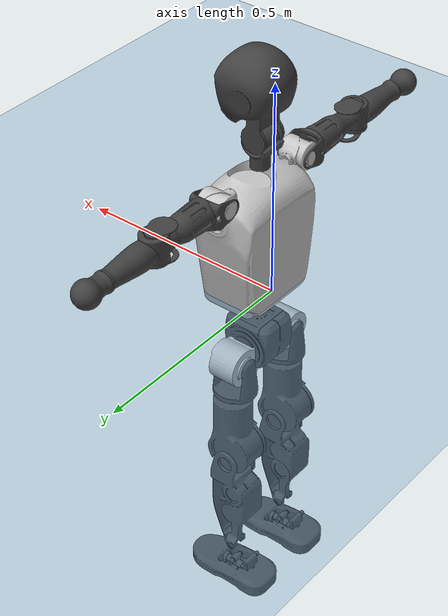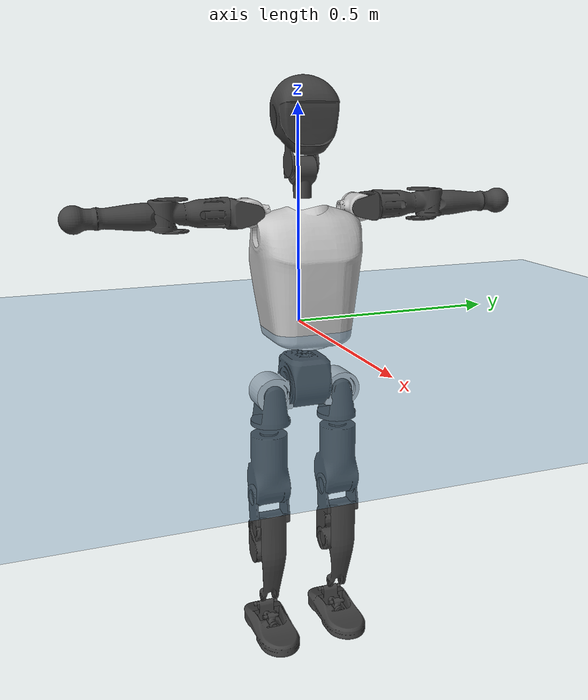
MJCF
<mujoco model="T1">
  <compiler angle="radian" assetdir="assets" balanceinertia="true" inertiafromgeom="false"/>

  <option timestep="0.005" density="1.2" viscosity="2e-05"/>

  <size nkey="1"/>

  <visual>
    <quality shadowsize="8192"/>
    <map shadowclip="0.5"/>
  </visual>

  <default>
    <default class="/">
      <joint armature="0.01" damping="0.01" frictionloss="0.1"/>
      <geom contype="0" conaffinity="0" group="1" solref="-1000 -80"/>
      <site size="0.01 0.005 0.005" group="5"/>
      <general forcelimited="true" biastype="affine" gainprm="25" biasprm="0 -25 -0.6"/>
      <default class="t1">
        <geom rgba="0.25 0.25 0.25 1"/>
        <default class="visual">
          <geom type="mesh" group="2"/>
        </default>
        <default class="collision">
          <geom group="3"/>
        </default>
        <default class="foot">
          <geom size="0.1115 0.05 0.015" type="box" condim="6" group="4" priority="1" solimp="0.015 1 0.015"/>
        </default>
        <default class="reward_collision_sphere">
          <geom group="5" rgba="1 0 0 1"/>
        </default>
      </default>
    </default>
  </default>

  <asset>
    <texture type="skybox" colorspace="auto" name="//unnamed_texture_0" builtin="gradient" rgb1="0.95 0.95 0.95" rgb2="0.95 0.95 0.95" width="100" height="600"/>
    <texture type="2d" colorspace="auto" name="texplane" builtin="checker" rgb1="0.345 0.575 0.748" rgb2="0.345 0.575 0.748" markrgb="1 1 1" width="512" height="512"/>
    <material name="MatPlane" class="/" texture="texplane" texuniform="true" texrepeat="2 2" specular="0.9"/>
    <mesh name="Trunk" class="/" file="Trunk.stl"/>
    <mesh name="H1" class="/" file="H1.stl"/>
    <mesh name="H2" class="/" file="H2.stl"/>
    <mesh name="AL1" class="/" file="AL1.stl"/>
    <mesh name="AL2" class="/" file="AL2.stl"/>
    <mesh name="AL3" class="/" file="AL3.stl"/>
    <mesh name="left_hand_link" class="/" file="left_hand_link.stl"/>
    <mesh name="AR1" class="/" file="AR1.stl"/>
    <mesh name="AR2" class="/" file="AR2.stl"/>
    <mesh name="AR3" class="/" file="AR3.stl"/>
    <mesh name="right_hand_link" class="/" file="right_hand_link.stl"/>
    <mesh name="Waist" class="/" file="Waist.stl"/>
    <mesh name="Hip_Pitch_Left" class="/" file="Hip_Pitch_Left.stl"/>
    <mesh name="Hip_Roll_Left" class="/" file="Hip_Roll_Left.stl"/>
    <mesh name="Hip_Yaw_Left" class="/" file="Hip_Yaw_Left.stl"/>
    <mesh name="Shank_Left" class="/" file="Shank_Left.stl"/>
    <mesh name="Ankle_Cross_Left" class="/" file="Ankle_Cross_Left.stl"/>
    <mesh name="left_foot_link" class="/" file="left_foot_link.stl"/>
    <mesh name="Hip_Pitch_Right" class="/" file="Hip_Pitch_Right.stl"/>
    <mesh name="Hip_Roll_Right" class="/" file="Hip_Roll_Right.stl"/>
    <mesh name="Hip_Yaw_Right" class="/" file="Hip_Yaw_Right.stl"/>
    <mesh name="Shank_Right" class="/" file="Shank_Right.stl"/>
    <mesh name="Ankle_Cross_Right" class="/" file="Ankle_Cross_Right.stl"/>
    <mesh name="right_foot_link" class="/" file="right_foot_link.stl"/>
  </asset>

  <worldbody>
    <geom name="floor" class="/" size="100 100 0.125" type="plane" group="0" material="MatPlane"/>
    <light name="toplight_shadow" class="/" pos="0 0 5" dir="0.0990148 0.0990148 -0.990148" type="directional" ambient="0.04 0.04 0.04" diffuse="0.55 0.55 0.55" specular="0.12 0.12 0.12"/>
    <light name="toplight_fill" class="/" pos="0 0 5" dir="0.0990148 0.0990148 -0.990148" type="directional" castshadow="false" ambient="0.04 0.04 0.04" diffuse="0.3 0.3 0.3" specular="0.08 0.08 0.08"/>
    <body name="trunk" childclass="t1" pos="0.000860678 -0.00214538 -0.000238541" quat="0.999999 -0.000100032 0.000969146 -0.000364247">
      <inertial pos="0.0329092 0.000233706 0.130479" quat="0.99998 -0.00236048 -0.00582808 -0.000994691" mass="7.82236" diaginertia="0.00766097 0.0253063 0.157211"/>
      <joint name="//unnamed_joint_0" type="free" armature="0" damping="0" frictionloss="0"/>
      <geom name="//unnamed_geom_1" class="visual" rgba="0.76 0.76 0.76 1" mesh="Trunk"/>
      <geom name="//unnamed_geom_2" class="collision" size="0.0659553 0.0879404 0.131911" pos="0.0365809 0 0.146742" type="box"/>
      <geom name="//unnamed_geom_3" class="reward_collision_sphere" size="0.101132" pos="0.0365809 0 0.122285"/>
      <geom name="//unnamed_geom_4" class="reward_collision_sphere" size="0.0131911" pos="0.0365809 0.0684826 0"/>
      <geom name="//unnamed_geom_5" class="reward_collision_sphere" size="0.0131911" pos="0.0365809 -0.0684826 0"/>
      <geom name="//unnamed_geom_6" class="reward_collision_sphere" size="0.0131911" pos="0.0365809 0.0862076 0.220114"/>
      <geom name="//unnamed_geom_7" class="reward_collision_sphere" size="0.0131911" pos="0.0365809 -0.0862076 0.220114"/>
      <site name="imu" pos="0.0191546 -0.020994 0.0181012" size="0.00879404"/>
      <camera name="track" pos="0 -1.61136 0" quat="0.707107 0.707107 0 0" mode="trackcom"/>
      <camera name="ego_camera" pos="0.0743812 0 0.513598" quat="-0.5 -0.5 0.5 0.5"/>
      <body name="H1" pos="0.0375871 -0.00285382 0.294732" quat="0.999998 0.000542487 0.00164605 -6.38275e-05">
        <inertial pos="-0.000876652 0.000128831 0.0724041" quat="0.76222 -0.0155983 -0.00907491 0.647067" mass="0.275153" diaginertia="2.00366e-05 7.57196e-05 0.000401343"/>
        <joint name="AAHead_yaw" pos="0 0 0" axis="-0.00262288 -0.000584548 0.999996" range="-1.52148 1.57342" armature="0.00692968" damping="0.0171023" frictionloss="0.0853209"/>
        <geom name="//unnamed_geom_8" class="visual" mesh="H1"/>
        <body name="H2" pos="-0.00546489 -0.000495984 0.0760546" quat="1 0.000436504 -0.000239712 -0.000306406">
          <inertial pos="0.00457688 0.00249787 0.119607" quat="0.988764 0.103313 -0.0824993 -0.0697508" mass="0.411349" diaginertia="0.000169936 0.000641163 0.00471026"/>
          <joint name="Head_pitch" pos="0 0 0" axis="0.00272459 -0.999996 0.000113006" range="-1.27073 0.340885" armature="0.00984856" damping="0" frictionloss="0.0790061"/>
          <geom name="//unnamed_geom_9" class="visual" mesh="H2"/>
          <geom name="//unnamed_geom_10" class="collision" size="0.0703524" pos="0.00609682 0 0.134514"/>
          <geom name="//unnamed_geom_11" class="reward_collision_sphere" size="0.0791464" pos="0.0121936 0 0.122285"/>
        </body>
      </body>
      <body name="AL1" pos="0.0401531 0.0856284 0.270479" quat="1 0.000521742 0.000248822 -4.38479e-06">
        <inertial pos="-7.89827e-05 0.0342246 0.000278595" quat="0.499852 0.502253 -0.497264 0.500618" mass="0.365828" diaginertia="0.000115649 0.00042771 0.000780692"/>
        <joint name="Left_Shoulder_Pitch" pos="0 0 0" axis="0.0107997 0.999941 0.000661512" range="-3.26999 1.18791" armature="0.00781591" damping="0.0104271" frictionloss="0.0872828"/>
        <geom name="//unnamed_geom_12" class="visual" rgba="0.76 0.76 0.76 1" mesh="AL1"/>
        <body name="AL2" pos="0.00128394 0.0397449 -0.000108678" quat="1 -0.000211299 -0.000214995 -6.35584e-05">
          <inertial pos="0.00439352 0.0280811 -0.00270958" quat="0.486842 0.512035 -0.485846 0.514547" mass="0.104909" diaginertia="3.40098e-05 0.000121211 0.000487432"/>
          <joint name="Left_Shoulder_Roll" pos="0 0 0" axis="-0.99999 0.00329006 -0.00317902" range="-1.64447 1.66901" armature="0.0103042" damping="0.0028822" frictionloss="0.0887372"/>
          <geom name="//unnamed_geom_13" class="visual" mesh="AL2"/>
          <body name="AL3" pos="-3.28966e-05 0.0469438 0.00277113" quat="0.999999 -0.000354695 0.000771945 0.000595755">
            <inertial pos="-0.000259333 0.0690042 -0.000915472" quat="0.708202 0.705987 0.00247923 0.00513645" mass="0.655853" diaginertia="0.00106168 0.00422121 0.00174412"/>
            <joint name="Left_Elbow_Pitch" pos="0 0 0" axis="0.0194952 -0.99971 0.0141517" stiffness="0.025164" range="-2.34824 2.23683" armature="0.0110561" damping="0.0389896" frictionloss="0.0908451"/>
            <geom name="//unnamed_geom_14" class="visual" mesh="AL3"/>
            <geom name="//unnamed_geom_15" class="collision" size="0.0263821 0.0659553" pos="0 0.0402839 0" quat="0.707105 0.707108 0 0" type="cylinder"/>
            <geom name="//unnamed_geom_16" class="reward_collision_sphere" size="0.0316586"/>
            <body name="left_hand_link" pos="0.00144312 0.117495 -0.00265309" quat="1 -0.00023787 6.59533e-05 0.000689253">
              <inertial pos="-0.0011713 0.0907029 0.00155896" quat="0.707934 0.706279 0.000107837 0.000121004" mass="0.226714" diaginertia="0.000662673 0.00268451 0.000609019"/>
              <joint name="Left_Elbow_Yaw" pos="0 0 0" axis="-0.000938631 -0.000156578 1" range="-2.46974 0.0240583" armature="0.00701724" damping="0.015806" frictionloss="0.0854113"/>
              <geom name="//unnamed_geom_17" class="visual" mesh="left_hand_link"/>
              <geom name="//unnamed_geom_18" class="collision" size="0.0263821 0.0769479" pos="0 0.104738 0" quat="0.707105 0.707108 0 0" type="cylinder"/>
              <geom name="//unnamed_geom_19" class="reward_collision_sphere" size="0.0439702"/>
              <geom name="//unnamed_geom_20" class="reward_collision_sphere" size="0.0307792" pos="0 0.0886246 0"/>
              <geom name="//unnamed_geom_21" class="reward_collision_sphere" size="0.0307792" pos="0 0.173221 0"/>
            </body>
          </body>
        </body>
      </body>
      <body name="AR1" pos="0.0369682 -0.0844556 0.267093" quat="0.999999 0.000721065 0.000411937 -0.000761284">
        <inertial pos="0.00292696 -0.0343208 -0.000729755" quat="0.524696 0.487257 -0.501139 0.485936" mass="0.367505" diaginertia="0.000114086 0.000435367 0.000766053"/>
        <joint name="Right_Shoulder_Pitch" pos="0 0 0" axis="-0.00517791 -0.999975 0.0048961" range="-1.2248 3.29896" armature="0.00874342" damping="0.00208446" frictionloss="0.0905129"/>
        <geom name="//unnamed_geom_22" class="visual" rgba="0.76 0.76 0.76 1" mesh="AR1"/>
        <body name="AR2" pos="-0.00265999 -0.0397232 -0.00123837" quat="0.999999 -0.000228085 -0.000307295 -0.0010071">
          <inertial pos="0.00478297 -0.0284805 0.00143197" quat="0.511412 0.487249 -0.51267 0.488073" mass="0.107328" diaginertia="3.44512e-05 0.000113482 0.000488662"/>
          <joint name="Right_Shoulder_Roll" pos="0 0 0" axis="-0.999939 0.000457541 -0.0110747" range="-1.71912 1.4861" armature="0.00922207" damping="0.00648037" frictionloss="0.098058"/>
          <geom name="//unnamed_geom_23" class="visual" mesh="AR2"/>
          <body name="AR3" pos="-0.00201446 -0.0517619 0.00287068" quat="1 -0.000155442 -0.000390879 0.000216614">
            <inertial pos="0.000681684 -0.0652032 -0.00162967" quat="0.709705 0.704491 0.000821603 -0.00315901" mass="0.70809" diaginertia="0.0010895 0.00434667 0.00165178"/>
            <joint name="Right_Elbow_Pitch" pos="0 0 0" axis="0.00358202 0.999969 0.00701972" stiffness="0.00742756" range="-2.26337 2.28729" armature="0.00862664" damping="0" frictionloss="0.0896523"/>
            <geom name="//unnamed_geom_24" class="visual" mesh="AR3"/>
            <geom name="//unnamed_geom_25" class="collision" size="0.0263821 0.0659553" pos="0 -0.0402839 0" quat="0.707105 0.707108 0 0" type="cylinder"/>
            <geom name="//unnamed_geom_26" class="reward_collision_sphere" size="0.0316586"/>
            <body name="right_hand_link" pos="-0.00266172 -0.117768 -0.00226178" quat="1 -0.000647354 6.84581e-05 0.000445841">
              <inertial pos="-0.000870579 -0.0908812 0.00222529" quat="0.70977 0.7044 0.00690764 8.23855e-05" mass="0.21767" diaginertia="0.000712669 0.00277005 0.000595221"/>
              <joint name="Right_Elbow_Yaw" pos="0 0 0" axis="-0.0105741 0.00639542 0.999924" range="0.0441382 2.43338" armature="0.00987925" damping="0" frictionloss="0.0867104"/>
              <geom name="//unnamed_geom_27" class="visual" mesh="right_hand_link"/>
              <geom name="//unnamed_geom_28" class="collision" size="0.0263821 0.0769479" pos="0 -0.104738 0" quat="0.707105 0.707108 0 0" type="cylinder"/>
              <geom name="//unnamed_geom_29" class="reward_collision_sphere" size="0.0439702"/>
              <geom name="//unnamed_geom_30" class="reward_collision_sphere" size="0.0307792" pos="0 -0.0886246 0"/>
              <geom name="//unnamed_geom_31" class="reward_collision_sphere" size="0.0307792" pos="0 -0.173221 0"/>
            </body>
          </body>
        </body>
      </body>
      <body name="Waist" pos="0.0344133 0.00299944 -0.141649" quat="1 -0.00077019 0.000194205 0.000124045">
        <inertial pos="0.00696359 -0.000972986 0.0086101" quat="0.983446 -0.00632593 -0.181071 -0.00286636" mass="1.65555" diaginertia="0.000464915 0.00169444 0.0128051"/>
        <joint name="Waist" pos="0 0 0" axis="0.0203396 -0.00628958 0.999773" range="-1.52434 1.52743" armature="0.00821638" damping="0" frictionloss="0.0900895"/>
        <geom name="//unnamed_geom_32" class="visual" mesh="Waist"/>
        <body name="Hip_Pitch_Left" pos="0.00387159 0.0850631 -0.000538899" quat="0.999996 -0.0011307 -0.00246132 0.000582065">
          <inertial pos="0.00170949 -0.00984363 -0.022856" quat="0.974673 0.223073 0.0155864 0.00276486" mass="0.743912" diaginertia="0.000160582 0.000505473 0.00343057"/>
          <joint name="Left_Hip_Pitch" pos="0 0 0" axis="-0.00270777 0.999915 0.0127486" stiffness="0.00946459" range="-1.85545 1.58095" armature="0.0094297" damping="0.00195375" frictionloss="0.0689364"/>
          <geom name="//unnamed_geom_33" class="visual" rgba="0.76 0.76 0.76 1" mesh="Hip_Pitch_Left"/>
          <body name="Hip_Roll_Left" pos="-0.0046102 -0.00056546 -0.0191776" quat="0.999996 0.00244477 -0.00140456 0.000695689">
            <inertial pos="0.000646235 -0.0016678 -0.0620653" quat="0.708841 -0.00484491 -0.0143113 0.705207" mass="0.269794" diaginertia="0.00014673 0.000540102 0.00145631"/>
            <joint name="Left_Hip_Roll" pos="0 0 0" axis="-0.999894 0.0121708 -0.00800252" stiffness="0.00704335" range="-1.57295 0.20521" armature="0.00858499" damping="0.00125756" frictionloss="0.089768"/>
            <geom name="//unnamed_geom_34" class="visual" mesh="Hip_Roll_Left"/>
            <geom name="//unnamed_geom_35" class="reward_collision_sphere" size="0.0483672"/>
            <body name="Hip_Yaw_Left" pos="0.00226716 0.00215566 -0.0996513" quat="1 -0.000247509 0.000550505 -0.000492612">
              <inertial pos="-0.00339889 -0.00553092 -0.112622" quat="0.7049 -0.0348143 -0.0270049 0.707937" mass="1.40049" diaginertia="0.00205529 0.00814435 0.00690801"/>
              <joint name="Left_Hip_Yaw" pos="0 0 0" axis="-0.0065064 0.00771372 -0.999949" range="-1.0253 1.00061" armature="0.0087444" damping="0" frictionloss="0.0871936"/>
              <geom name="//unnamed_geom_36" class="visual" mesh="Hip_Yaw_Left"/>
              <geom name="//unnamed_geom_37" class="collision" size="0.0439702 0.0703524" type="cylinder"/>
              <body name="Shank_Left" pos="-0.0120543 0.00306793 -0.16449" quat="1 0.000699836 -0.000271532 -1.96693e-05">
                <inertial pos="-0.00410682 0.000403576 -0.150248" quat="0.99665 0.00439482 -0.0189634 0.0794388" mass="1.10427" diaginertia="0.00285305 0.011473 0.00490641"/>
                <joint name="Left_Knee_Pitch" pos="0 0 0" axis="0.0127987 0.999917 -0.00154568" range="0.00639037 2.38665" armature="0.00825308" damping="0.00118864" frictionloss="0.0884567"/>
                <geom name="//unnamed_geom_38" class="visual" mesh="Shank_Left"/>
                <geom name="//unnamed_geom_39" class="collision" size="0.0439702 0.0659553" pos="0 0 -0.146742" type="cylinder"/>
                <geom name="//unnamed_geom_40" class="reward_collision_sphere" size="0.0571613"/>
                <body name="Ankle_Cross_Left" pos="0.000289573 0.00107534 -0.34141" quat="1 -3.72979e-05 0.000655857 -0.000524704">
                  <inertial pos="-0.00401975 0.00104495 -0.00750385" quat="0.443149 0.555473 0.548536 0.440656" mass="0.050997" diaginertia="2.47519e-06 8.97066e-06 3.18713e-05"/>
                  <joint name="Left_Ankle_Pitch" pos="0 0 0" axis="0.000439032 0.999994 0.0033392" range="-0.786901 0.270206" armature="0.0088527" damping="0.0335106" frictionloss="0.0895147"/>
                  <geom name="//unnamed_geom_41" class="visual" mesh="Ankle_Cross_Left"/>
                  <body name="left_foot_link" pos="-0.000834341 -0.00121536 -0.0118315" quat="0.999998 0.000987826 -0.00146011 0.00108964">
                    <inertial pos="-0.00278536 0.00302267 -0.00958629" quat="0.00596365 0.622271 -0.00373961 0.78277" mass="0.427551" diaginertia="0.000206674 0.000754254 0.00518753"/>
                    <joint name="Left_Ankle_Roll" pos="0 0 0" axis="-0.999934 -0.0105946 -0.00440813" range="-0.440056 0.351592" armature="0.00844166" damping="0.00684513" frictionloss="0.0623248"/>
                    <geom name="//unnamed_geom_42" class="visual" mesh="left_foot_link"/>
                    <geom name="left_foot" class="foot" size="0.104832 0.0518296 0.0102835" pos="0.00609682 0 -0.0183428"/>
                    <geom name="//unnamed_geom_44" class="reward_collision_sphere" size="0.045729" pos="0.00609682 0 -0.0183428"/>
                    <geom name="//unnamed_geom_45" class="reward_collision_sphere" size="0.0263821" pos="0.0579198 -0.0185306 -0.0183428"/>
                    <geom name="//unnamed_geom_46" class="reward_collision_sphere" size="0.0263821" pos="-0.0426777 -0.0185306 -0.0183428"/>
                    <site name="left_foot" class="foot" pos="0.00609682 0 -0.0183428" size="0.00879404"/>
                  </body>
                </body>
              </body>
            </body>
          </body>
        </body>
        <body name="Hip_Pitch_Right" pos="-0.000584146 -0.0859321 0.000745008" quat="1 -7.29852e-05 -0.000673617 -0.000188782">
          <inertial pos="-0.00166754 0.0056408 -0.0232267" quat="0.972588 -0.231495 0.0126624 0.0179673" mass="0.719753" diaginertia="0.000160646 0.000533889 0.00352709"/>
          <joint name="Right_Hip_Pitch" pos="0 0 0" axis="0.00717176 -0.999974 -0.000176879" stiffness="0.00262582" range="-1.55297 1.7842" armature="0.00943801" damping="0.00690264" frictionloss="0.0849802"/>
          <geom name="//unnamed_geom_47" class="visual" rgba="0.76 0.76 0.76 1" mesh="Hip_Pitch_Right"/>
          <body name="Hip_Roll_Right" pos="-0.00106474 -0.000670923 -0.0207705" quat="0.999999 -0.000957805 0.00036538 -0.000436461">
            <inertial pos="-0.000854039 1.95197e-05 -0.0653449" quat="0.709797 -0.00610934 -0.00230973 0.704376" mass="0.275255" diaginertia="0.000152574 0.000537471 0.00149891"/>
            <joint name="Right_Hip_Roll" pos="0 0 0" axis="-0.999875 -0.000649262 -0.0157944" stiffness="0.0356481" range="-0.252015 1.58679" armature="0.00848901" damping="0.00586471" frictionloss="0.0843981"/>
            <geom name="//unnamed_geom_48" class="visual" mesh="Hip_Roll_Right"/>
            <geom name="//unnamed_geom_49" class="reward_collision_sphere" size="0.0483672"/>
            <body name="Hip_Yaw_Right" pos="0.00223489 -0.00536118 -0.101123" quat="1 0.000416584 -6.2341e-05 7.96119e-05">
              <inertial pos="-0.00312499 -0.000599784 -0.104481" quat="0.709378 -0.0269488 -0.0337882 0.703502" mass="1.48005" diaginertia="0.0022492 0.00908336 0.00749463"/>
              <joint name="Right_Hip_Yaw" pos="0 0 0" axis="0.0159229 -0.00175595 -0.999872" range="-1.05573 0.9916" armature="0.00956775" damping="0" frictionloss="0.0879048"/>
              <geom name="//unnamed_geom_50" class="visual" mesh="Hip_Yaw_Right"/>
              <geom name="//unnamed_geom_51" class="collision" size="0.0439702 0.0703524" type="cylinder"/>
              <body name="Shank_Right" pos="-0.0072503 -0.00150568 -0.164433" quat="1 -0.000168257 0.000127481 -6.57984e-05">
                <inertial pos="-0.00922354 0.00284774 -0.151598" quat="0.998963 0.0050507 -0.0228063 -0.0390903" mass="1.25679" diaginertia="0.00303204 0.011781 0.00552811"/>
                <joint name="Right_Knee_Pitch" pos="0 0 0" axis="0.000999371 -0.999969 -0.00778087" range="-2.34497 0.0407166" armature="0.00884831" damping="0.00791499" frictionloss="0.0816668"/>
                <geom name="//unnamed_geom_52" class="visual" mesh="Shank_Right"/>
                <geom name="//unnamed_geom_53" class="collision" size="0.0439702 0.0659553" pos="0 0 -0.146742" type="cylinder"/>
                <geom name="//unnamed_geom_54" class="reward_collision_sphere" size="0.0571613"/>
                <body name="Ankle_Cross_Right" pos="-0.0015013 0.00426257 -0.343427" quat="0.999998 0.00142532 -0.000469162 0.00115992">
                  <inertial pos="-0.00485861 -0.000556804 -0.0119895" quat="0.443112 0.551069 0.551211 0.442878" mass="0.0501726" diaginertia="2.5502e-06 8.85213e-06 3.03663e-05"/>
                  <joint name="Right_Ankle_Pitch" pos="0 0 0" axis="0.008234 -0.999948 -0.0059533" stiffness="0.00401878" range="-0.375273 0.78099" armature="0.00821759" damping="0.00112554" frictionloss="0.0862415"/>
                  <geom name="//unnamed_geom_55" class="visual" mesh="Ankle_Cross_Right"/>
                  <body name="right_foot_link" pos="0.00113608 0.000364549 -0.0145778" quat="1 0.000672637 0.000234505 0.000340096">
                    <inertial pos="0.0012855 -0.00206427 -0.0110821" quat="-0.00538148 0.615056 0.0073692 0.78843" mass="0.468057" diaginertia="0.000239667 0.00081731 0.0058512"/>
                    <joint name="Right_Ankle_Roll" pos="0 0 0" axis="-0.999968 0.00706708 0.00381373" range="-0.428761 0.416117" armature="0.00971025" damping="0.0169726" frictionloss="0.0989832"/>
                    <geom name="//unnamed_geom_56" class="visual" mesh="right_foot_link"/>
                    <geom name="right_foot" class="foot" size="0.08726 0.0487739 0.0122473" pos="0.00609682 0 -0.0183428"/>
                    <geom name="//unnamed_geom_58" class="reward_collision_sphere" size="0.0351762"/>
                    <geom name="//unnamed_geom_59" class="reward_collision_sphere" size="0.0263821" pos="0.00609682 0 -0.0183428"/>
                    <geom name="//unnamed_geom_60" class="reward_collision_sphere" size="0.0263821" pos="0.0579198 0.0185306 -0.0183428"/>
                    <geom name="//unnamed_geom_61" class="reward_collision_sphere" size="0.0263821" pos="-0.0426777 0.0185306 -0.0183428"/>
                    <site name="right_foot" class="foot" pos="0.00609682 0 -0.0183428" size="0.00879404"/>
                  </body>
                </body>
              </body>
            </body>
          </body>
        </body>
      </body>
    </body>
  </worldbody>

  <contact>
    <pair class="/" geom1="floor" geom2="left_foot" name="//unnamed_contact_0"/>
    <pair class="/" geom1="floor" geom2="right_foot" name="//unnamed_contact_1"/>
  </contact>

  <actuator>
    <general name="AAHead_yaw" class="/" joint="AAHead_yaw" forcerange="-5.62687 5.62687" gainprm="24.1671" biasprm="0 -24.1671 -0.535347"/>
    <general name="Head_pitch" class="/" joint="Head_pitch" forcerange="-6.74179 6.74179" gainprm="24.1671" biasprm="0 -24.1671 -0.535347"/>
    <general name="Left_Shoulder_Pitch" class="/" joint="Left_Shoulder_Pitch" forcerange="-16.9026 16.9026" gainprm="24.1671" biasprm="0 -24.1671 -0.535347"/>
    <general name="Left_Shoulder_Roll" class="/" joint="Left_Shoulder_Roll" forcerange="-15.3137 15.3137" gainprm="24.1671" biasprm="0 -24.1671 -0.535347"/>
    <general name="Left_Elbow_Pitch" class="/" joint="Left_Elbow_Pitch" forcerange="-18.4278 18.4278" gainprm="24.1671" biasprm="0 -24.1671 -0.535347"/>
    <general name="Left_Elbow_Yaw" class="/" joint="Left_Elbow_Yaw" forcerange="-14.1479 14.1479" gainprm="24.1671" biasprm="0 -24.1671 -0.535347"/>
    <general name="Right_Shoulder_Pitch" class="/" joint="Right_Shoulder_Pitch" forcerange="-13.8764 13.8764" gainprm="24.1671" biasprm="0 -24.1671 -0.535347"/>
    <general name="Right_Shoulder_Roll" class="/" joint="Right_Shoulder_Roll" forcerange="-14.7352 14.7352" gainprm="24.1671" biasprm="0 -24.1671 -0.535347"/>
    <general name="Right_Elbow_Pitch" class="/" joint="Right_Elbow_Pitch" forcerange="-15.8642 15.8642" gainprm="24.1671" biasprm="0 -24.1671 -0.535347"/>
    <general name="Right_Elbow_Yaw" class="/" joint="Right_Elbow_Yaw" forcerange="-15.3511 15.3511" gainprm="24.1671" biasprm="0 -24.1671 -0.535347"/>
    <general name="Waist" class="/" joint="Waist" forcerange="-25.6983 25.6983" gainprm="24.1671" biasprm="0 -24.1671 -0.535347"/>
    <general name="Left_Hip_Pitch" class="/" joint="Left_Hip_Pitch" forcerange="-36.8003 36.8003" gainprm="24.1671" biasprm="0 -24.1671 -0.535347"/>
    <general name="Left_Hip_Roll" class="/" joint="Left_Hip_Roll" forcerange="-23.0763 23.0763" gainprm="24.1671" biasprm="0 -24.1671 -0.535347"/>
    <general name="Left_Hip_Yaw" class="/" joint="Left_Hip_Yaw" forcerange="-30.7983 30.7983" gainprm="24.1671" biasprm="0 -24.1671 -0.535347"/>
    <general name="Left_Knee_Pitch" class="/" joint="Left_Knee_Pitch" forcerange="-61.344 61.344" gainprm="24.1671" biasprm="0 -24.1671 -0.535347"/>
    <general name="Left_Ankle_Pitch" class="/" joint="Left_Ankle_Pitch" forcerange="-17.2133 17.2133" gainprm="24.1671" biasprm="0 -24.1671 -0.535347"/>
    <general name="Left_Ankle_Roll" class="/" joint="Left_Ankle_Roll" forcerange="-13.3844 13.3844" gainprm="24.1671" biasprm="0 -24.1671 -0.535347"/>
    <general name="Right_Hip_Pitch" class="/" joint="Right_Hip_Pitch" forcerange="-43.0316 43.0316" gainprm="24.1671" biasprm="0 -24.1671 -0.535347"/>
    <general name="Right_Hip_Roll" class="/" joint="Right_Hip_Roll" forcerange="-26.9124 26.9124" gainprm="24.1671" biasprm="0 -24.1671 -0.535347"/>
    <general name="Right_Hip_Yaw" class="/" joint="Right_Hip_Yaw" forcerange="-27.3869 27.3869" gainprm="24.1671" biasprm="0 -24.1671 -0.535347"/>
    <general name="Right_Knee_Pitch" class="/" joint="Right_Knee_Pitch" forcerange="-53.5153 53.5153" gainprm="24.1671" biasprm="0 -24.1671 -0.535347"/>
    <general name="Right_Ankle_Pitch" class="/" joint="Right_Ankle_Pitch" forcerange="-19.1849 19.1849" gainprm="24.1671" biasprm="0 -24.1671 -0.535347"/>
    <general name="Right_Ankle_Roll" class="/" joint="Right_Ankle_Roll" forcerange="-13.2751 13.2751" gainprm="24.1671" biasprm="0 -24.1671 -0.535347"/>
  </actuator>

  <sensor>
    <gyro site="imu" name="imu_angular_velocity"/>
    <velocimeter site="imu" name="imu_linear_velocity"/>
    <framelinvel objtype="site" objname="left_foot" name="left_foot_global_linear_velocity"/>
    <framelinvel objtype="site" objname="right_foot" name="right_foot_global_linear_velocity"/>
  </sensor>

  <keyframe>
    <key name="home" qpos="0 0 0.6385 1 0 0 0 0 0 0 1.4 0 -0.4 0 -1.4 0 0.4 0 -0.4 0 0 0.8 -0.4 0 0.4 0 0 -0.8 0.4 0"/>
  </keyframe>
</mujoco>
